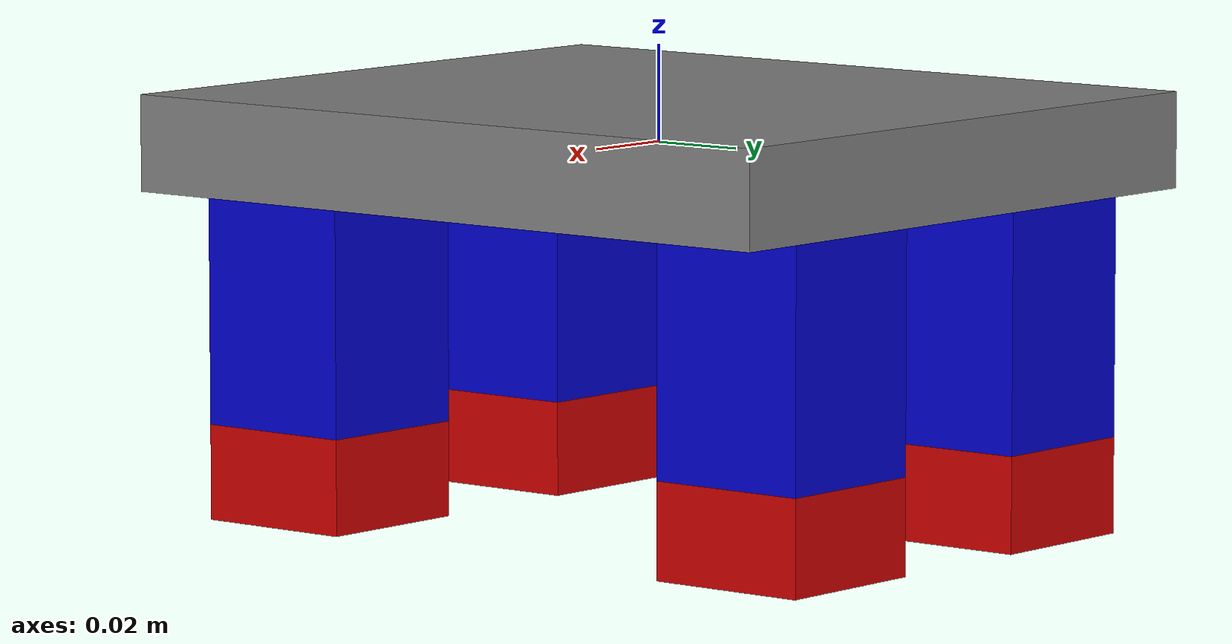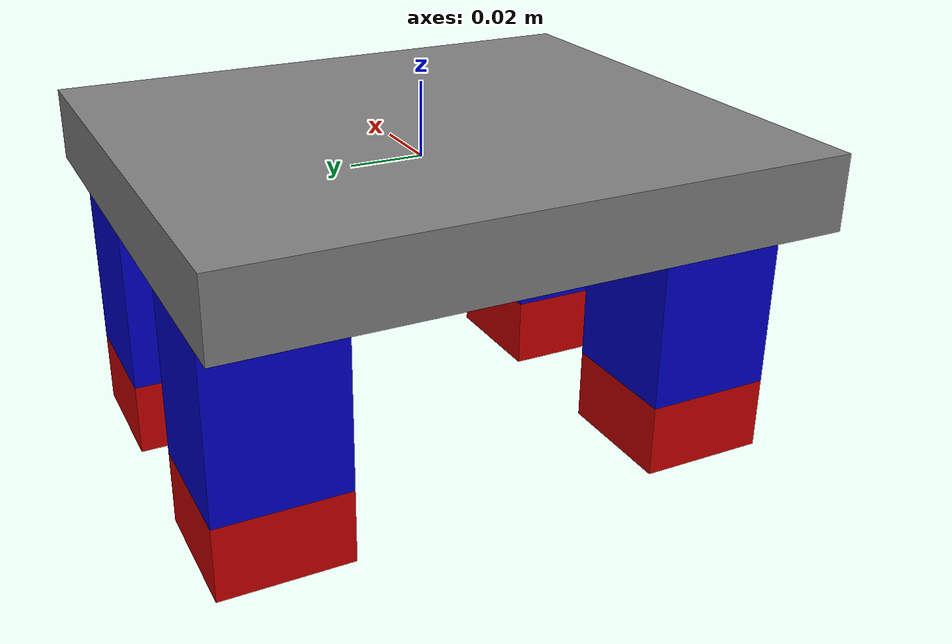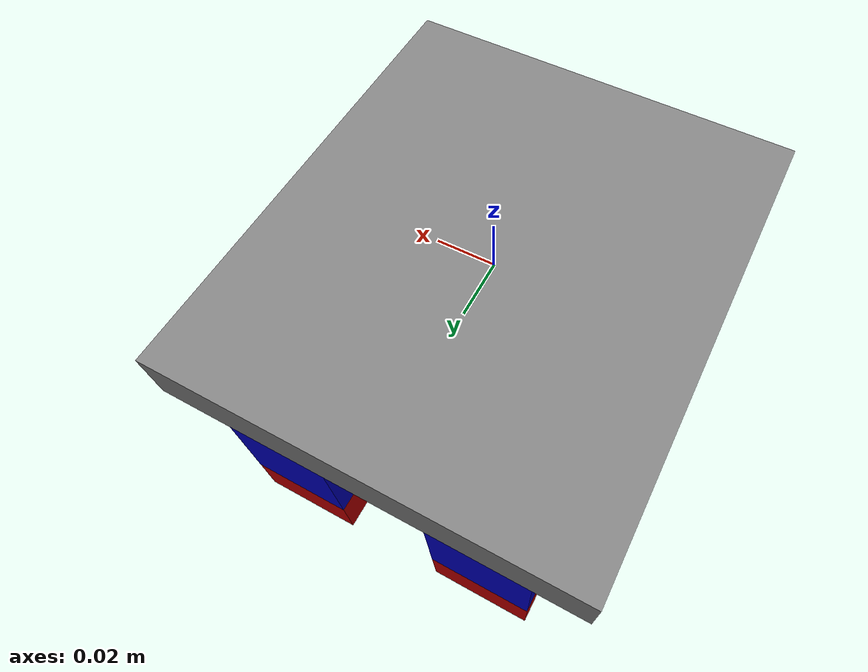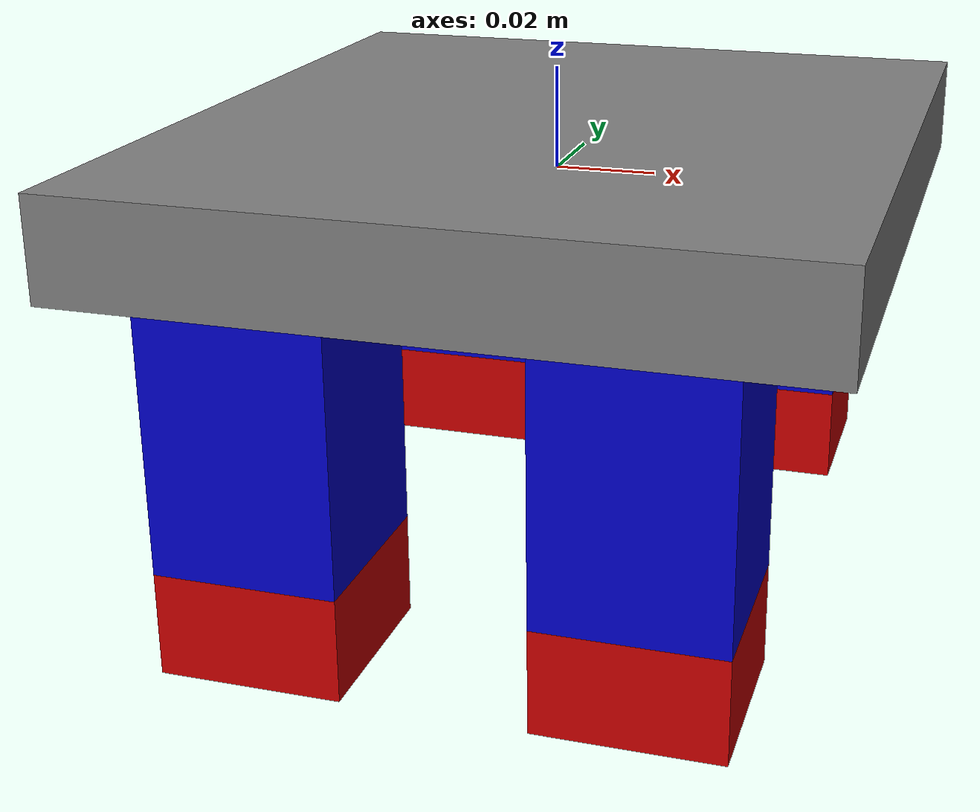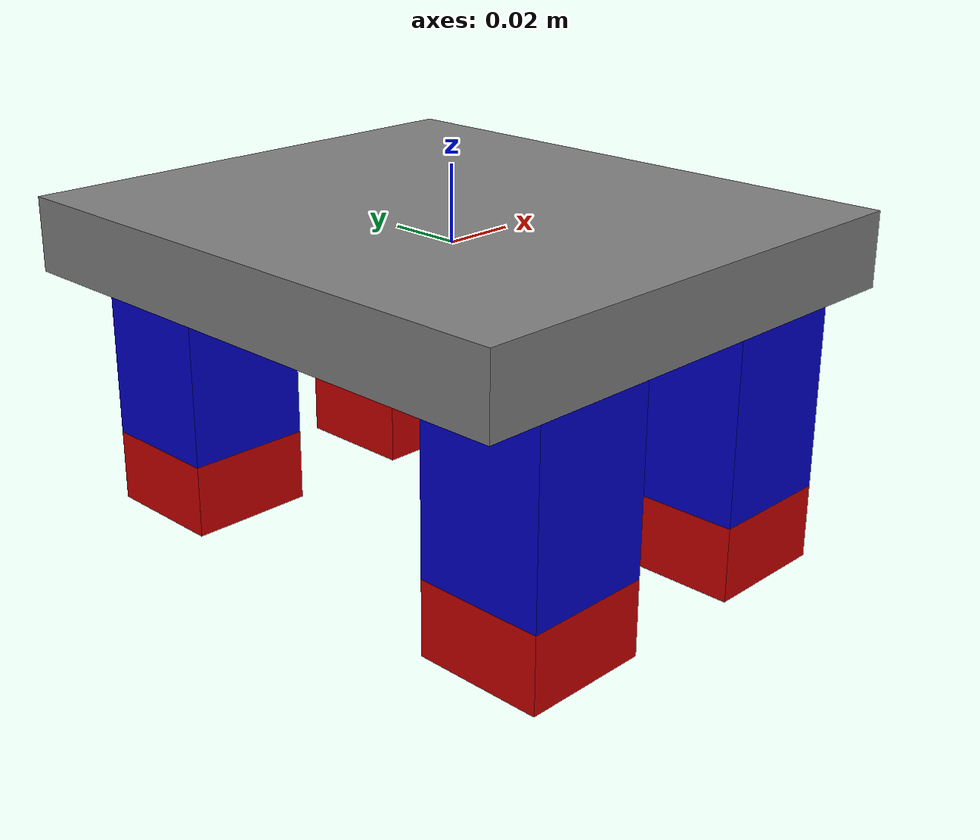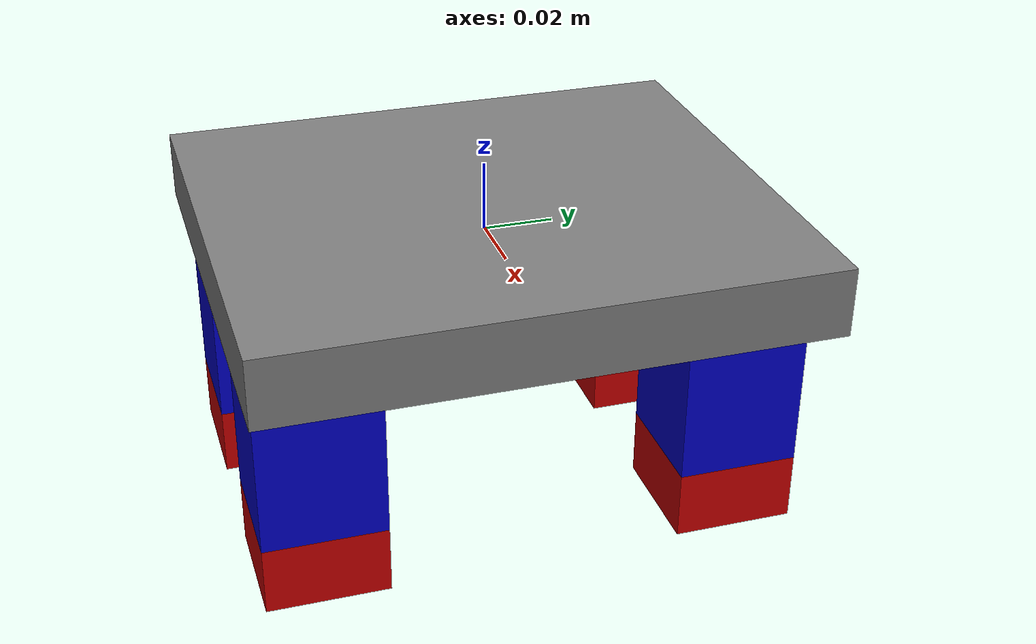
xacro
<?xml version="1.0"?>
<!-- Author: James Avtges
     Email: jamesavtges2022@u.northwestern.edu
     Date: 10/26/2022   -->
<robot name="hsa_robot" xmlns:xacro="http://ros.org/wiki/xacro">

    <material name="gray">
	    <color rgba="0.5 0.5 0.5 1.0"/>
	</material>

    <material name="red">
        <color rgba="0.8 0.0 0.0 1.0"/>
    </material>

    <material name="blue">
        <color rgba="0.0 0.0 0.8 1.0"/>
    </material>

	<xacro:property name="torso_width" value="0.14" />
    <xacro:property name="torso_height" value="0.16" />
    <xacro:property name="torso_depth" value="0.02" />
    <xacro:property name="torso_mass" value="0.01" />

	<xacro:property name="leg_length" value="0.4" />
	<xacro:property name="leg_radius" value="0.025"/>
	<xacro:property name="leg_mass" value="0.04" />

	<xacro:property name="foot_width" value="0.1" />
    <xacro:property name="foot_height" value="0.1" />
    <xacro:property name="foot_depth" value="0.01" />
	<xacro:property name="foot_mass" value="0.01" />

    <xacro:property name="leg_fl_x" value="0.035" />
    <xacro:property name="leg_fl_y" value="0.06" />

    <xacro:property name="leg_fr_x" value="0.035" />
    <xacro:property name="leg_fr_y" value="-0.06" />

    <xacro:property name="leg_rl_x" value="-0.035" />
    <xacro:property name="leg_rl_y" value="0.06" />

    <xacro:property name="leg_rr_x" value="-0.035" />
    <xacro:property name="leg_rr_y" value="-0.06" />

    <xacro:property name="foot_fl_x" value="0.4" />
    <xacro:property name="foot_fl_y" value="0.4" />

    <xacro:property name="foot_fr_x" value="0.4" />
    <xacro:property name="foot_fr_y" value="0.4" />

    <xacro:property name="foot_rl_x" value="0.4" />
    <xacro:property name="foot_rl_y" value="0.4" />

    <xacro:property name="foot_rr_x" value="0.4" />
    <xacro:property name="foot_rr_y" value="0.4" />

    <link name="dummy">

        <inertial>
      			<origin rpy="0 0 0" xyz="0.0 0.0 0.0"/>
			<mass value = "0.001"/>

			<!-- Fix the inertia tag-->
			<inertia ixx="0"
                     iyy="0"
                     izz="0"
                     ixy="0"
                     ixz="0"
                     iyz="0"/>
    	</inertial>
    </link>

	<link name="base_link">
		<visual>
			<geometry>
				<box size="${torso_width} ${torso_height} ${torso_depth}" />
			</geometry>
            <material name="gray"/>

			<origin rpy="0 0 0" xyz="0.0 0.0 0.0"/>
		</visual>

		<inertial>
      			<origin rpy="0 0 0" xyz="0.0 0.0 0.0"/>
			<mass value = "${torso_mass}"/>

			<!-- Fix the inertia tag-->
			<inertia ixx="${(1.0/12.0) * torso_mass * ( (torso_height * torso_height) + (torso_depth * torso_depth) ) }"
                                 iyy="${(1.0/12.0) * torso_mass * ( (torso_width * torso_width) + (torso_depth * torso_depth) ) }"
                                 izz="${(1.0/12.0) * torso_mass * ( (torso_width * torso_width) + (torso_height * torso_height) ) }"
                                 ixy="0"
                                 ixz="0"
                                 iyz="0"/>
    	</inertial>

		<collision>
      			<origin rpy="0 0 0" xyz="0.0 0.0 0.0"/>
    	  		<geometry>
        			<box size="${torso_width} ${torso_height} ${torso_depth}" />
     			</geometry>
		</collision>
    </link>

    <joint name="dummy_joint" type="fixed">
        <parent link="dummy"/>
        <child link="base_link"/>
    </joint>

    <xacro:macro name="leg" params="leg_x leg_y name">
        <link name="${name}">
            <visual>
                <geometry>
                    <box size="0.035 0.035 0.05" />
                </geometry>
                <material name="blue"/>
                <origin rpy="0 0 0" xyz="0 0 -0.025"/>
            </visual>

            <inertial>
                <origin rpy="0 0 0" xyz="${leg_x} ${leg_y} -0.025"/>
                <mass value = "0.02"/>

                <inertia ixx="${(1.0/12.0) * 0.02 * ( (0.035 * 0.035) + (0.05 * 0.05) ) }"
                                 iyy="${(1.0/12.0) * 0.02 * ( (0.035 * 0.035) + (0.05 * 0.05) ) }"
                                 izz="${(1.0/12.0) * 0.02 * ( (0.035 * 0.035) + (0.035 * 0.035) ) }"
                                 ixy="0"
                                 ixz="0"
                                 iyz="0"/>

            </inertial>

            <collision>
                <origin rpy="0 0 0" xyz="${leg_x} ${leg_y} -0.025"/>
                <geometry>
                    <box size="0.035 0.035 0.05" />
                </geometry>

            </collision>
        </link>
    </xacro:macro>

    <xacro:macro name="foot" params="leg_x leg_y name">
        <link name="${name}">
            <visual>
                <geometry>
                    <box size="0.035 0.035 0.02" />
                </geometry>
                <material name="red"/>
                <origin rpy="0 0 0" xyz="0 0 0"/>

            </visual>

            <inertial>
                <origin rpy="0 0 0" xyz="${leg_x} ${leg_y} -0.06"/>
                <mass value = "${foot_mass}"/>

                <inertia ixx="${(1.0/12.0) * foot_mass * ( (0.035 * 0.035) + (0.01 * 0.01) ) }"
                                 iyy="${(1.0/12.0) * foot_mass * ( (0.035 * 0.035) + (0.01 * 0.01) ) }"
                                 izz="${(1.0/12.0) * foot_mass * ( (0.035 * 0.035) + (0.035 * 0.035) ) }"
                                 ixy="0"
                                 ixz="0"
                                 iyz="0"/>

            </inertial>

            <collision>
                <origin rpy="0 0 0" xyz="${leg_x} ${leg_y} -0.06"/>
                <geometry>
                    <box size="0.035 0.035 0.02" />
                </geometry>

            </collision>
        </link>
    </xacro:macro>

    <xacro:macro name="leg_joint" params="link_child name x y">

        <joint name="${name}" type="revolute">
            <origin xyz="${x} ${y} -0.01" rpy="0 0 0" />
            <axis xyz = "0 1 0" />
            <parent link="base_link" />
            <child link="${link_child}" />
                    <!-- Previously was +/-0.25, now we limited by 20% -->
            <limit velocity="1.0" effort="10" lower="-0.2" upper="0.2"/>
        </joint>

    </xacro:macro>

    <xacro:macro name="foot_joint" params="link_parent link_child name x y">

        <joint name="${name}" type="prismatic">
            <origin xyz="0.0 0.0 -0.06" rpy="0 0 0" />
            <axis xyz = "0 0 1" />
            <parent link="${link_parent}" />
            <child link="${link_child}" />
                    <!-- Previously was [-0.008, 0.001], now we limited by 20% -->
            <limit velocity="1.0" effort="10" lower="-0.0064" upper="0.0008"/>
        </joint>

    </xacro:macro>

    <!-- Xacro macros for our legs -->
    <xacro:leg leg_x="${leg_fl_x}" leg_y="${leg_fl_y}" name="leg_fl">
    </xacro:leg>

    <xacro:leg leg_x="${leg_fr_x}" leg_y="${leg_fr_y}" name="leg_fr">
    </xacro:leg>

    <xacro:leg leg_x="${leg_rl_x}" leg_y="${leg_rl_y}" name="leg_rl">
    </xacro:leg>

    <xacro:leg leg_x="${leg_rr_x}" leg_y="${leg_rr_y}" name="leg_rr">
    </xacro:leg>

    <!-- Xacro macros for our feet -->
    <xacro:foot leg_x="${leg_fl_x}" leg_y="${leg_fl_y}" name="foot_fl">
    </xacro:foot>

    <xacro:foot leg_x="${leg_fr_x}" leg_y="${leg_fr_y}" name="foot_fr">
    </xacro:foot>

    <xacro:foot leg_x="${leg_rl_x}" leg_y="${leg_rl_y}" name="foot_rl">
    </xacro:foot>

    <xacro:foot leg_x="${leg_rr_x}" leg_y="${leg_rr_y}" name="foot_rr">
    </xacro:foot>

    <!-- Xacro macros for the links between our base link (the body) and the leg -->
    <xacro:leg_joint link_child="leg_fl" name="base_to_leg_fl" x="${leg_fl_x}" y="${leg_fl_y}">
    </xacro:leg_joint>

    <xacro:leg_joint link_child="leg_fr" name="base_to_leg_fr" x="${leg_fr_x}" y="${leg_fr_y}">
    </xacro:leg_joint>

    <xacro:leg_joint link_child="leg_rl" name="base_to_leg_rl" x="${leg_rl_x}" y="${leg_rl_y}">
    </xacro:leg_joint>

    <xacro:leg_joint link_child="leg_rr" name="base_to_leg_rr" x="${leg_rr_x}" y="${leg_rr_y}">
    </xacro:leg_joint>

    <!-- Xacro macros for the links between our legs and our feet -->
    <xacro:foot_joint link_parent="leg_fl" link_child="foot_fl" name="leg_to_foot_fl" x="${leg_fl_x}" y="${leg_fl_y}">
    </xacro:foot_joint>

    <xacro:foot_joint link_parent="leg_fr" link_child="foot_fr" name="leg_to_foot_fr" x="${leg_fr_x}" y="${leg_fr_y}">
    </xacro:foot_joint>

    <xacro:foot_joint link_parent="leg_rl" link_child="foot_rl" name="leg_to_foot_rl" x="${leg_rl_x}" y="${leg_rl_y}">
    </xacro:foot_joint>

    <xacro:foot_joint link_parent="leg_rr" link_child="foot_rr" name="leg_to_foot_rr" x="${leg_rr_x}" y="${leg_rr_y}">
    </xacro:foot_joint>

</robot>
